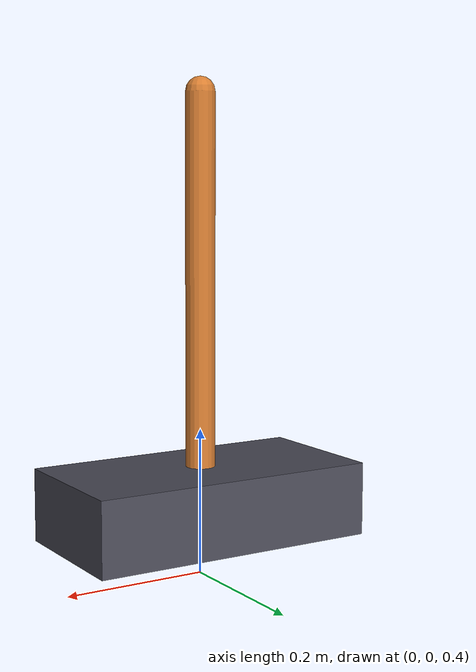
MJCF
<mujoco>
  <option timestep="0.002">
    <flag energy="enable"/>
  </option>
  <worldbody>
    <geom type="plane" size="5 5 0.1"/>
    <body name="cart" pos="0 0 0.5">
      <joint name="cart_slide" type="slide" axis="1 0 0" damping="0.1"/>
      <geom name="cart_box" type="box" size="0.2 0.1 0.05" mass="1"
            rgba="0.3 0.3 0.35 1"/>
      <body name="pole" pos="0 0 0.05">
        <joint name="pole_hinge" type="hinge" axis="0 1 0"/>
        <geom name="pole_rod" type="capsule" size="0.02"
              fromto="0 0 0 0 0 0.5" mass="0.1"
              rgba="0.85 0.5 0.2 1"/>
      </body>
    </body>
  </worldbody>
  <actuator>
    <motor joint="cart_slide" name="force"/>
  </actuator>
  <sensor>
    <jointpos joint="cart_slide" name="cart_pos"/>
    <jointvel joint="cart_slide" name="cart_vel"/>
    <jointpos joint="pole_hinge" name="pole_angle"/>
    <jointvel joint="pole_hinge" name="pole_angvel"/>
  </sensor>
</mujoco>
